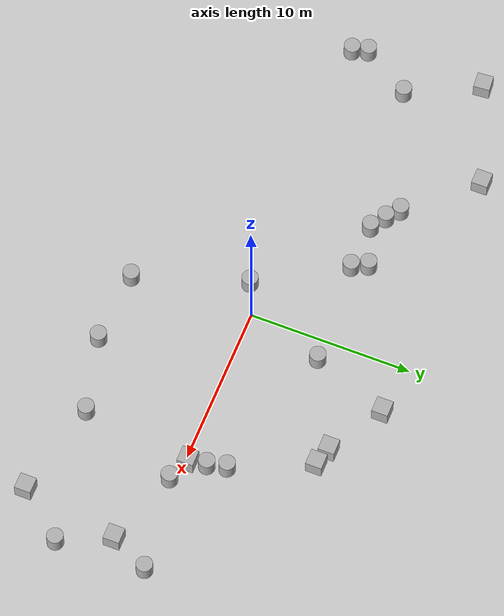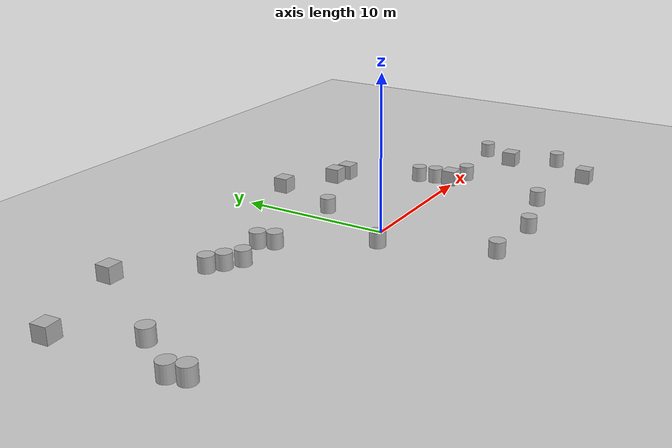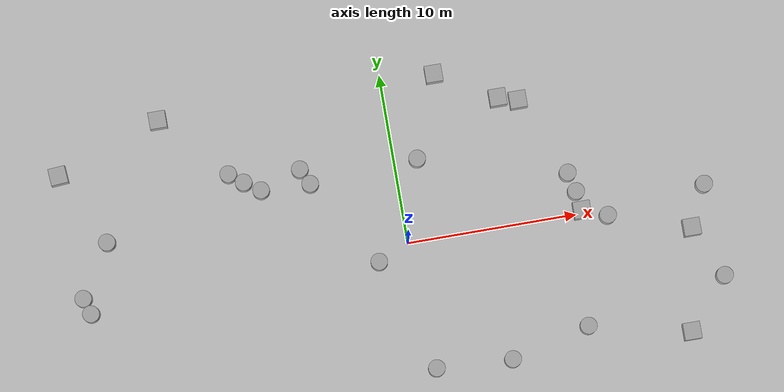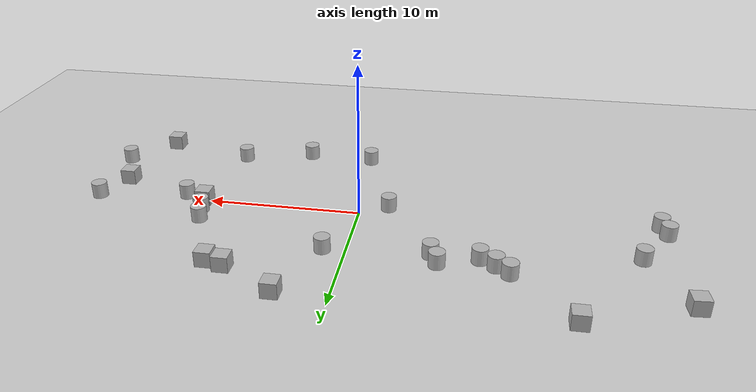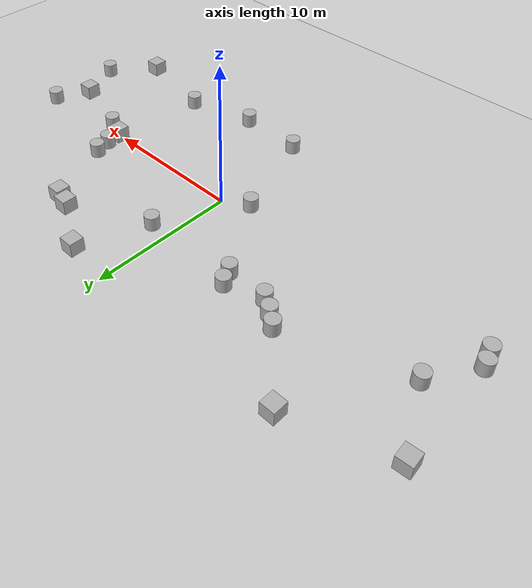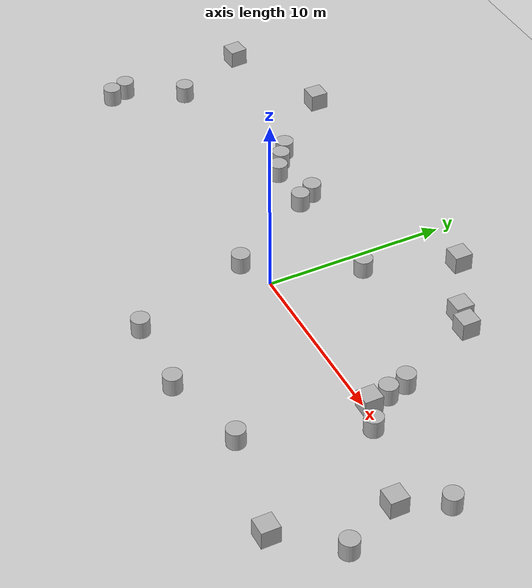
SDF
<sdf version="1.10">
 <world name="empty_world">
  <model name="ground_plane">
   <static>true</static>
   <link name="link">
    <collision name="collision">
     <geometry><plane><normal>0 0 1</normal><size>100 100</size></plane></geometry>
    </collision>
    <visual name="visual">
     <geometry><plane><normal>0 0 1</normal><size>100 100</size></plane></geometry>
     <material>
      <ambient>0.800000012 0.800000012 0.800000012 1</ambient>
      <diffuse>0.800000012 0.800000012 0.800000012 1</diffuse>
      <specular>0.800000012 0.800000012 0.800000012 1</specular>
     </material>
    </visual>
    <inertial>
     <mass>1</mass>
     <inertia><ixx>1</ixx><ixy>0</ixy><ixz>0</ixz><iyy>1</iyy><iyz>0</iyz><izz>1</izz></inertia>
    </inertial>
   </link>
  </model>
  <model name="box">
   <pose>-19.447543866838423 7.2747616850761476 0.4999995747579436 -3.8605564281143885e-07 1.6945823438939649e-07 0.077861553158576652</pose>
   <link name="box_link">
    <inertial>
     <inertia><ixx>0.16666</ixx><ixy>0</ixy><ixz>0</ixz><iyy>0.16666</iyy><iyz>0</iyz><izz>0.16666</izz></inertia>
     <mass>1</mass>
    </inertial>
    <collision name="box_collision"><geometry><box><size>1 1 1</size></box></geometry></collision>
    <visual name="box_visual">
     <geometry><box><size>1 1 1</size></box></geometry>
     <material>
      <ambient>0.300000012 0.300000012 0.300000012 1</ambient>
      <diffuse>0.699999988 0.699999988 0.699999988 1</diffuse>
      <specular>1 1 1 1</specular>
     </material>
    </visual>
   </link>
   <static>true</static>
  </model>
  <model name="box_0">
   <pose>-13.199981477717435 9.529411715496714 0.49999999063292572 1.9729171940061026e-08 -1.4001924528147462e-09 0.0024933186258197433</pose>
   <link name="box_link">
    <inertial>
     <inertia><ixx>0.16666</ixx><ixy>0</ixy><ixz>0</ixz><iyy>0.16666</iyy><iyz>0</iyz><izz>0.16666</izz></inertia>
     <mass>1</mass>
    </inertial>
    <collision name="box_collision"><geometry><box><size>1 1 1</size></box></geometry></collision>
    <visual name="box_visual">
     <geometry><box><size>1 1 1</size></box></geometry>
     <material>
      <ambient>0.300000012 0.300000012 0.300000012 1</ambient>
      <diffuse>0.699999988 0.699999988 0.699999988 1</diffuse>
      <specular>1 1 1 1</specular>
     </material>
    </visual>
   </link>
   <static>true</static>
  </model>
  <model name="cylinder">
   <pose>-9.6523482860643313 5.6966679601534516 0.49999943547231995 -1.4102198390911328e-08 1.0731281663783188e-08 -0.050406535512246387</pose>
   <link name="cylinder_link">
    <inertial>
     <inertia>
      <ixx>0.14580000000000001</ixx>
      <ixy>0</ixy>
      <ixz>0</ixz>
      <iyy>0.14580000000000001</iyy>
      <iyz>0</iyz>
      <izz>0.125</izz>
     </inertia>
     <mass>1</mass>
    </inertial>
    <collision name="cylinder_collision">
     <geometry><cylinder><radius>0.5</radius><length>1</length></cylinder></geometry>
    </collision>
    <visual name="cylinder_visual">
     <geometry><cylinder><radius>0.5</radius><length>1</length></cylinder></geometry>
     <material>
      <ambient>0.300000012 0.300000012 0.300000012 1</ambient>
      <diffuse>0.699999988 0.699999988 0.699999988 1</diffuse>
      <specular>1 1 1 1</specular>
     </material>
    </visual>
   </link>
   <static>true</static>
  </model>
  <model name="cylinder_0">
   <pose>-5.4981639678038725 5.2748518919406786 0.49999942638036005 -3.8159951733573719e-21 -1.6049541814374341e-19 1.6504470069877819e-20</pose>
   <link name="cylinder_link">
    <inertial>
     <inertia>
      <ixx>0.14580000000000001</ixx>
      <ixy>0</ixy>
      <ixz>0</ixz>
      <iyy>0.14580000000000001</iyy>
      <iyz>0</iyz>
      <izz>0.125</izz>
     </inertia>
     <mass>1</mass>
    </inertial>
    <collision name="cylinder_collision">
     <geometry><cylinder><radius>0.5</radius><length>1</length></cylinder></geometry>
    </collision>
    <visual name="cylinder_visual">
     <geometry><cylinder><radius>0.5</radius><length>1</length></cylinder></geometry>
     <material>
      <ambient>0.300000012 0.300000012 0.300000012 1</ambient>
      <diffuse>0.699999988 0.699999988 0.699999988 1</diffuse>
      <specular>1 1 1 1</specular>
     </material>
    </visual>
   </link>
   <static>true</static>
  </model>
  <model name="cylinder_1">
   <pose>-1.8368737283679906 -0.82918888756835818 0.49999942638036005 1.387387341066153e-19 1.7479834102454724e-19 1.8186544634463279e-20</pose>
   <link name="cylinder_link">
    <inertial>
     <inertia>
      <ixx>0.14580000000000001</ixx>
      <ixy>0</ixy>
      <ixz>0</ixz>
      <iyy>0.14580000000000001</iyy>
      <iyz>0</iyz>
      <izz>0.125</izz>
     </inertia>
     <mass>1</mass>
    </inertial>
    <collision name="cylinder_collision">
     <geometry><cylinder><radius>0.5</radius><length>1</length></cylinder></geometry>
    </collision>
    <visual name="cylinder_visual">
     <geometry><cylinder><radius>0.5</radius><length>1</length></cylinder></geometry>
     <material>
      <ambient>0.300000012 0.300000012 0.300000012 1</ambient>
      <diffuse>0.699999988 0.699999988 0.699999988 1</diffuse>
      <specular>1 1 1 1</specular>
     </material>
    </visual>
   </link>
   <static>true</static>
  </model>
  <model name="cylinder_2">
   <pose>1.3572129056381694 4.7458462281199152 0.4999994329199538 7.3766348633423013e-16 1.0797278830729775e-08 9.9707944005853484e-10</pose>
   <link name="cylinder_link">
    <inertial>
     <inertia>
      <ixx>0.14580000000000001</ixx>
      <ixy>0</ixy>
      <ixz>0</ixz>
      <iyy>0.14580000000000001</iyy>
      <iyz>0</iyz>
      <izz>0.125</izz>
     </inertia>
     <mass>1</mass>
    </inertial>
    <collision name="cylinder_collision">
     <geometry><cylinder><radius>0.5</radius><length>1</length></cylinder></geometry>
    </collision>
    <visual name="cylinder_visual">
     <geometry><cylinder><radius>0.5</radius><length>1</length></cylinder></geometry>
     <material>
      <ambient>0.300000012 0.300000012 0.300000012 1</ambient>
      <diffuse>0.699999988 0.699999988 0.699999988 1</diffuse>
      <specular>1 1 1 1</specular>
     </material>
    </visual>
   </link>
   <static>true</static>
  </model>
  <model name="box_1">
   <pose>3.1426352733939655 9.4955979281874896 0.49999999990199806 6.2287739151293738e-22 9.3279666454713669e-22 -3.6315533669320137e-22</pose>
   <link name="box_link">
    <inertial>
     <inertia><ixx>0.16666</ixx><ixy>0</ixy><ixz>0</ixz><iyy>0.16666</iyy><iyz>0</iyz><izz>0.16666</izz></inertia>
     <mass>1</mass>
    </inertial>
    <collision name="box_collision"><geometry><box><size>1 1 1</size></box></geometry></collision>
    <visual name="box_visual">
     <geometry><box><size>1 1 1</size></box></geometry>
     <material>
      <ambient>0.300000012 0.300000012 0.300000012 1</ambient>
      <diffuse>0.699999988 0.699999988 0.699999988 1</diffuse>
      <specular>1 1 1 1</specular>
     </material>
    </visual>
   </link>
   <static>true</static>
  </model>
  <model name="box_2">
   <pose>7.7352183409828932 7.170943573487464 0.49999999990199806 6.2287739151293738e-22 9.3279666454713669e-22 -3.6315533669320137e-22</pose>
   <link name="box_link">
    <inertial>
     <inertia><ixx>0.16666</ixx><ixy>0</ixy><ixz>0</ixz><iyy>0.16666</iyy><iyz>0</iyz><izz>0.16666</izz></inertia>
     <mass>1</mass>
    </inertial>
    <collision name="box_collision"><geometry><box><size>1 1 1</size></box></geometry></collision>
    <visual name="box_visual">
     <geometry><box><size>1 1 1</size></box></geometry>
     <material>
      <ambient>0.300000012 0.300000012 0.300000012 1</ambient>
      <diffuse>0.699999988 0.699999988 0.699999988 1</diffuse>
      <specular>1 1 1 1</specular>
     </material>
    </visual>
   </link>
   <static>true</static>
  </model>
  <model name="box_3">
   <pose>10.320273458855231 0.17719998761532096 0.49999999990199806 6.2287739151293738e-22 9.3279666454713669e-22 -3.6315533669320137e-22</pose>
   <link name="box_link">
    <inertial>
     <inertia><ixx>0.16666</ixx><ixy>0</ixy><ixz>0</ixz><iyy>0.16666</iyy><iyz>0</iyz><izz>0.16666</izz></inertia>
     <mass>1</mass>
    </inertial>
    <collision name="box_collision"><geometry><box><size>1 1 1</size></box></geometry></collision>
    <visual name="box_visual">
     <geometry><box><size>1 1 1</size></box></geometry>
     <material>
      <ambient>0.300000012 0.300000012 0.300000012 1</ambient>
      <diffuse>0.699999988 0.699999988 0.699999988 1</diffuse>
      <specular>1 1 1 1</specular>
     </material>
    </visual>
   </link>
   <static>true</static>
  </model>
  <model name="cylinder_3">
   <pose>10.159927280281213 1.3013546185450826 0.49999942638036005 4.6875231528734115e-19 1.7167537846951419e-19 8.1521379182205424e-21</pose>
   <link name="cylinder_link">
    <inertial>
     <inertia>
      <ixx>0.14580000000000001</ixx>
      <ixy>0</ixy>
      <ixz>0</ixz>
      <iyy>0.14580000000000001</iyy>
      <iyz>0</iyz>
      <izz>0.125</izz>
     </inertia>
     <mass>1</mass>
    </inertial>
    <collision name="cylinder_collision">
     <geometry><cylinder><radius>0.5</radius><length>1</length></cylinder></geometry>
    </collision>
    <visual name="cylinder_visual">
     <geometry><cylinder><radius>0.5</radius><length>1</length></cylinder></geometry>
     <material>
      <ambient>0.300000012 0.300000012 0.300000012 1</ambient>
      <diffuse>0.699999988 0.699999988 0.699999988 1</diffuse>
      <specular>1 1 1 1</specular>
     </material>
    </visual>
   </link>
   <static>true</static>
  </model>
  <model name="cylinder_4">
   <pose>17.589204301012245 0.46902261892449904 0.49999942638036005 9.6960953410408387e-20 -3.2720050125789555e-19 2.4647587059717133e-20</pose>
   <link name="cylinder_link">
    <inertial>
     <inertia>
      <ixx>0.14580000000000001</ixx>
      <ixy>0</ixy>
      <ixz>0</ixz>
      <iyy>0.14580000000000001</iyy>
      <iyz>0</iyz>
      <izz>0.125</izz>
     </inertia>
     <mass>1</mass>
    </inertial>
    <collision name="cylinder_collision">
     <geometry><cylinder><radius>0.5</radius><length>1</length></cylinder></geometry>
    </collision>
    <visual name="cylinder_visual">
     <geometry><cylinder><radius>0.5</radius><length>1</length></cylinder></geometry>
     <material>
      <ambient>0.300000012 0.300000012 0.300000012 1</ambient>
      <diffuse>0.699999988 0.699999988 0.699999988 1</diffuse>
      <specular>1 1 1 1</specular>
     </material>
    </visual>
   </link>
   <static>true</static>
  </model>
  <model name="box_4">
   <pose>16.449988264482197 -1.8886496375233657 0.49999999990199806 6.2287739151293738e-22 9.3279666454713669e-22 -3.6315533669320137e-22</pose>
   <link name="box_link">
    <inertial>
     <inertia><ixx>0.16666</ixx><ixy>0</ixy><ixz>0</ixz><iyy>0.16666</iyy><iyz>0</iyz><izz>0.16666</izz></inertia>
     <mass>1</mass>
    </inertial>
    <collision name="box_collision"><geometry><box><size>1 1 1</size></box></geometry></collision>
    <visual name="box_visual">
     <geometry><box><size>1 1 1</size></box></geometry>
     <material>
      <ambient>0.300000012 0.300000012 0.300000012 1</ambient>
      <diffuse>0.699999988 0.699999988 0.699999988 1</diffuse>
      <specular>1 1 1 1</specular>
     </material>
    </visual>
   </link>
   <static>true</static>
  </model>
  <model name="box_5">
   <pose>15.415860327515036 -7.8650439754918162 0.49999999235666714 -2.0235348558019218e-08 -5.4095292036978226e-10 2.754969671188418e-07</pose>
   <link name="box_link">
    <inertial>
     <inertia><ixx>0.16666</ixx><ixy>0</ixy><ixz>0</ixz><iyy>0.16666</iyy><iyz>0</iyz><izz>0.16666</izz></inertia>
     <mass>1</mass>
    </inertial>
    <collision name="box_collision"><geometry><box><size>1 1 1</size></box></geometry></collision>
    <visual name="box_visual">
     <geometry><box><size>1 1 1</size></box></geometry>
     <material>
      <ambient>0.300000012 0.300000012 0.300000012 1</ambient>
      <diffuse>0.699999988 0.699999988 0.699999988 1</diffuse>
      <specular>1 1 1 1</specular>
     </material>
    </visual>
   </link>
   <static>true</static>
  </model>
  <model name="cylinder_6">
   <pose>11.752829611597381 -0.38150180043711845 0.49999942638036005 -7.4475629153943373e-20 2.4314145242684027e-19 2.8384713089617412e-21</pose>
   <link name="cylinder_link">
    <inertial>
     <inertia>
      <ixx>0.14580000000000001</ixx>
      <ixy>0</ixy>
      <ixz>0</ixz>
      <iyy>0.14580000000000001</iyy>
      <iyz>0</iyz>
      <izz>0.125</izz>
     </inertia>
     <mass>1</mass>
    </inertial>
    <collision name="cylinder_collision">
     <geometry><cylinder><radius>0.5</radius><length>1</length></cylinder></geometry>
    </collision>
    <visual name="cylinder_visual">
     <geometry><cylinder><radius>0.5</radius><length>1</length></cylinder></geometry>
     <material>
      <ambient>0.300000012 0.300000012 0.300000012 1</ambient>
      <diffuse>0.699999988 0.699999988 0.699999988 1</diffuse>
      <specular>1 1 1 1</specular>
     </material>
    </visual>
   </link>
   <static>true</static>
  </model>
  <model name="cylinder_7">
   <pose>17.854267871007053 -4.9818690172100348 0.49999942638036005 -1.2027592401443267e-19 1.0404206135578428e-19 3.1038624854371553e-20</pose>
   <link name="cylinder_link">
    <inertial>
     <inertia>
      <ixx>0.14580000000000001</ixx>
      <ixy>0</ixy>
      <ixz>0</ixz>
      <iyy>0.14580000000000001</iyy>
      <iyz>0</iyz>
      <izz>0.125</izz>
     </inertia>
     <mass>1</mass>
    </inertial>
    <collision name="cylinder_collision">
     <geometry><cylinder><radius>0.5</radius><length>1</length></cylinder></geometry>
    </collision>
    <visual name="cylinder_visual">
     <geometry><cylinder><radius>0.5</radius><length>1</length></cylinder></geometry>
     <material>
      <ambient>0.300000012 0.300000012 0.300000012 1</ambient>
      <diffuse>0.699999988 0.699999988 0.699999988 1</diffuse>
      <specular>1 1 1 1</specular>
     </material>
    </visual>
   </link>
   <static>true</static>
  </model>
  <model name="cylinder_8">
   <pose>9.5348630115903514 -6.5528362012915853 0.49999942638036005 4.4311015558892038e-19 2.6294776182427126e-19 -1.5024773136058346e-20</pose>
   <link name="cylinder_link">
    <inertial>
     <inertia>
      <ixx>0.14580000000000001</ixx>
      <ixy>0</ixy>
      <ixz>0</ixz>
      <iyy>0.14580000000000001</iyy>
      <iyz>0</iyz>
      <izz>0.125</izz>
     </inertia>
     <mass>1</mass>
    </inertial>
    <collision name="cylinder_collision">
     <geometry><cylinder><radius>0.5</radius><length>1</length></cylinder></geometry>
    </collision>
    <visual name="cylinder_visual">
     <geometry><cylinder><radius>0.5</radius><length>1</length></cylinder></geometry>
     <material>
      <ambient>0.300000012 0.300000012 0.300000012 1</ambient>
      <diffuse>0.699999988 0.699999988 0.699999988 1</diffuse>
      <specular>1 1 1 1</specular>
     </material>
    </visual>
   </link>
   <static>true</static>
  </model>
  <model name="cylinder_9">
   <pose>4.8736925991263735 -7.7265303594347534 0.49999942638036005 -1.4169845423142048e-19 -1.8146596453449824e-20 3.0926300231275656e-20</pose>
   <link name="cylinder_link">
    <inertial>
     <inertia>
      <ixx>0.14580000000000001</ixx>
      <ixy>0</ixy>
      <ixz>0</ixz>
      <iyy>0.14580000000000001</iyy>
      <iyz>0</iyz>
      <izz>0.125</izz>
     </inertia>
     <mass>1</mass>
    </inertial>
    <collision name="cylinder_collision">
     <geometry><cylinder><radius>0.5</radius><length>1</length></cylinder></geometry>
    </collision>
    <visual name="cylinder_visual">
     <geometry><cylinder><radius>0.5</radius><length>1</length></cylinder></geometry>
     <material>
      <ambient>0.300000012 0.300000012 0.300000012 1</ambient>
      <diffuse>0.699999988 0.699999988 0.699999988 1</diffuse>
      <specular>1 1 1 1</specular>
     </material>
    </visual>
   </link>
   <static>true</static>
  </model>
  <model name="cylinder_10">
   <pose>0.41807809986648081 -7.5013841398874428 0.49999942638036005 8.3010531714761403e-20 2.0354935397665459e-19 2.4130632553382187e-20</pose>
   <link name="cylinder_link">
    <inertial>
     <inertia>
      <ixx>0.14580000000000001</ixx>
      <ixy>0</ixy>
      <ixz>0</ixz>
      <iyy>0.14580000000000001</iyy>
      <iyz>0</iyz>
      <izz>0.125</izz>
     </inertia>
     <mass>1</mass>
    </inertial>
    <collision name="cylinder_collision">
     <geometry><cylinder><radius>0.5</radius><length>1</length></cylinder></geometry>
    </collision>
    <visual name="cylinder_visual">
     <geometry><cylinder><radius>0.5</radius><length>1</length></cylinder></geometry>
     <material>
      <ambient>0.300000012 0.300000012 0.300000012 1</ambient>
      <diffuse>0.699999988 0.699999988 0.699999988 1</diffuse>
      <specular>1 1 1 1</specular>
     </material>
    </visual>
   </link>
   <static>true</static>
  </model>
  <model name="cylinder_11">
   <pose>-19.162246332365168 -0.058073825335674255 0.49999999284792374 -2.0927771004003492e-07 -4.501342349749944e-07 0.27328441855679042</pose>
   <link name="cylinder_link">
    <inertial>
     <inertia>
      <ixx>0.14580000000000001</ixx>
      <ixy>0</ixy>
      <ixz>0</ixz>
      <iyy>0.14580000000000001</iyy>
      <iyz>0</iyz>
      <izz>0.125</izz>
     </inertia>
     <mass>1</mass>
    </inertial>
    <collision name="cylinder_collision">
     <geometry><cylinder><radius>0.5</radius><length>1</length></cylinder></geometry>
    </collision>
    <visual name="cylinder_visual">
     <geometry><cylinder><radius>0.5</radius><length>1</length></cylinder></geometry>
     <material>
      <ambient>0.300000012 0.300000012 0.300000012 1</ambient>
      <diffuse>0.699999988 0.699999988 0.699999988 1</diffuse>
      <specular>1 1 1 1</specular>
     </material>
    </visual>
   </link>
   <static>true</static>
  </model>
  <model name="cylinder_12">
   <pose>-17.276473849782249 2.9505155811153889 0.49999942638036005 3.7773168599644404e-20 -1.466332647943471e-19 3.0024965852931576e-20</pose>
   <link name="cylinder_link">
    <inertial>
     <inertia>
      <ixx>0.14580000000000001</ixx>
      <ixy>0</ixy>
      <ixz>0</ixz>
      <iyy>0.14580000000000001</iyy>
      <iyz>0</iyz>
      <izz>0.125</izz>
     </inertia>
     <mass>1</mass>
    </inertial>
    <collision name="cylinder_collision">
     <geometry><cylinder><radius>0.5</radius><length>1</length></cylinder></geometry>
    </collision>
    <visual name="cylinder_visual">
     <geometry><cylinder><radius>0.5</radius><length>1</length></cylinder></geometry>
     <material>
      <ambient>0.300000012 0.300000012 0.300000012 1</ambient>
      <diffuse>0.699999988 0.699999988 0.699999988 1</diffuse>
      <specular>1 1 1 1</specular>
     </material>
    </visual>
   </link>
   <static>true</static>
  </model>
  <model name="cylinder_13">
   <pose>-8.8536897222477773 5.0653322834491163 0.49999942638036005 2.8420903840474984e-19 3.0998363938163697e-19 6.8835437580057146e-21</pose>
   <link name="cylinder_link">
    <inertial>
     <inertia>
      <ixx>0.14580000000000001</ixx>
      <ixy>0</ixy>
      <ixz>0</ixz>
      <iyy>0.14580000000000001</iyy>
      <iyz>0</iyz>
      <izz>0.125</izz>
     </inertia>
     <mass>1</mass>
    </inertial>
    <collision name="cylinder_collision">
     <geometry><cylinder><radius>0.5</radius><length>1</length></cylinder></geometry>
    </collision>
    <visual name="cylinder_visual">
     <geometry><cylinder><radius>0.5</radius><length>1</length></cylinder></geometry>
     <material>
      <ambient>0.300000012 0.300000012 0.300000012 1</ambient>
      <diffuse>0.699999988 0.699999988 0.699999988 1</diffuse>
      <specular>1 1 1 1</specular>
     </material>
    </visual>
   </link>
   <static>true</static>
  </model>
  <model name="cylinder_14">
   <pose>-7.9249927984715658 4.4519193645208253 0.49999942638036005 2.8062591342686179e-19 -1.9969249653193573e-19 -3.133845470380914e-20</pose>
   <link name="cylinder_link">
    <inertial>
     <inertia>
      <ixx>0.14580000000000001</ixx>
      <ixy>0</ixy>
      <ixz>0</ixz>
      <iyy>0.14580000000000001</iyy>
      <iyz>0</iyz>
      <izz>0.125</izz>
     </inertia>
     <mass>1</mass>
    </inertial>
    <collision name="cylinder_collision">
     <geometry><cylinder><radius>0.5</radius><length>1</length></cylinder></geometry>
    </collision>
    <visual name="cylinder_visual">
     <geometry><cylinder><radius>0.5</radius><length>1</length></cylinder></geometry>
     <material>
      <ambient>0.300000012 0.300000012 0.300000012 1</ambient>
      <diffuse>0.699999988 0.699999988 0.699999988 1</diffuse>
      <specular>1 1 1 1</specular>
     </material>
    </visual>
   </link>
   <static>true</static>
  </model>
  <model name="cylinder_15">
   <pose>-5.0398594795230265 4.3359756712854276 0.49999942638036005 -7.7857886456003757e-21 6.7235981235560875e-19 -2.8495231566825743e-22</pose>
   <link name="cylinder_link">
    <inertial>
     <inertia>
      <ixx>0.14580000000000001</ixx>
      <ixy>0</ixy>
      <ixz>0</ixz>
      <iyy>0.14580000000000001</iyy>
      <iyz>0</iyz>
      <izz>0.125</izz>
     </inertia>
     <mass>1</mass>
    </inertial>
    <collision name="cylinder_collision">
     <geometry><cylinder><radius>0.5</radius><length>1</length></cylinder></geometry>
    </collision>
    <visual name="cylinder_visual">
     <geometry><cylinder><radius>0.5</radius><length>1</length></cylinder></geometry>
     <material>
      <ambient>0.300000012 0.300000012 0.300000012 1</ambient>
      <diffuse>0.699999988 0.699999988 0.699999988 1</diffuse>
      <specular>1 1 1 1</specular>
     </material>
    </visual>
   </link>
   <static>true</static>
  </model>
  <model name="cylinder_17">
   <pose>-18.8651900916297 -1.0129338073289493 0.499999338297614 1.8501074420481711e-07 6.2627394996269322e-08 5.2658737226551144e-05</pose>
   <link name="cylinder_link">
    <inertial>
     <inertia>
      <ixx>0.14580000000000001</ixx>
      <ixy>0</ixy>
      <ixz>0</ixz>
      <iyy>0.14580000000000001</iyy>
      <iyz>0</iyz>
      <izz>0.125</izz>
     </inertia>
     <mass>1</mass>
    </inertial>
    <collision name="cylinder_collision">
     <geometry><cylinder><radius>0.5</radius><length>1</length></cylinder></geometry>
    </collision>
    <visual name="cylinder_visual">
     <geometry><cylinder><radius>0.5</radius><length>1</length></cylinder></geometry>
     <material>
      <ambient>0.300000012 0.300000012 0.300000012 1</ambient>
      <diffuse>0.699999988 0.699999988 0.699999988 1</diffuse>
      <specular>1 1 1 1</specular>
     </material>
    </visual>
   </link>
   <static>true</static>
  </model>
  <model name="cylinder_18">
   <pose>9.8682857802191268 2.4524339399095982 0.49999942638036005 2.2777723844229198e-19 -5.8104987443639407e-20 -2.7513217174761041e-20</pose>
   <link name="cylinder_link">
    <inertial>
     <inertia>
      <ixx>0.14580000000000001</ixx>
      <ixy>0</ixy>
      <ixz>0</ixz>
      <iyy>0.14580000000000001</iyy>
      <iyz>0</iyz>
      <izz>0.125</izz>
     </inertia>
     <mass>1</mass>
    </inertial>
    <collision name="cylinder_collision">
     <geometry><cylinder><radius>0.5</radius><length>1</length></cylinder></geometry>
    </collision>
    <visual name="cylinder_visual">
     <geometry><cylinder><radius>0.5</radius><length>1</length></cylinder></geometry>
     <material>
      <ambient>0.300000012 0.300000012 0.300000012 1</ambient>
      <diffuse>0.699999988 0.699999988 0.699999988 1</diffuse>
      <specular>1 1 1 1</specular>
     </material>
    </visual>
   </link>
   <static>true</static>
  </model>
  <model name="box_6">
   <pose>6.5952452293068378 7.4983097650374706 0.49999999990199806 6.2287739151293738e-22 9.3279666454713669e-22 -3.6315533669320137e-22</pose>
   <link name="box_link">
    <inertial>
     <inertia><ixx>0.16666</ixx><ixy>0</ixy><ixz>0</ixz><iyy>0.16666</iyy><iyz>0</iyz><izz>0.16666</izz></inertia>
     <mass>1</mass>
    </inertial>
    <collision name="box_collision"><geometry><box><size>1 1 1</size></box></geometry></collision>
    <visual name="box_visual">
     <geometry><box><size>1 1 1</size></box></geometry>
     <material>
      <ambient>0.300000012 0.300000012 0.300000012 1</ambient>
      <diffuse>0.699999988 0.699999988 0.699999988 1</diffuse>
      <specular>1 1 1 1</specular>
     </material>
    </visual>
   </link>
   <static>true</static>
  </model>
 </world>
</sdf>
